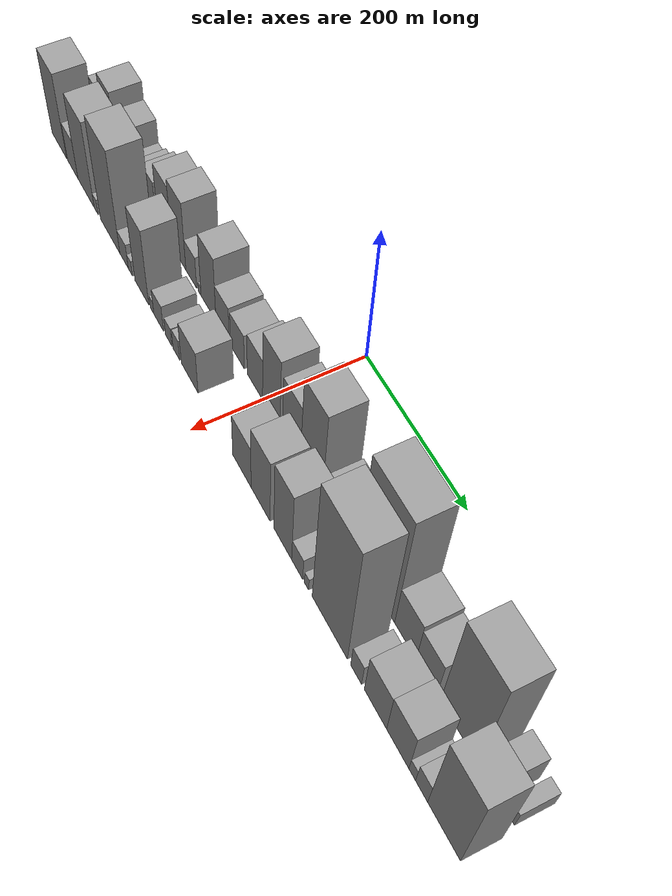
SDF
<sdf version="1.6">
 <world name="default">
  <scene>
   <sky><clouds><speed>12</speed></clouds></sky>
   <ambient>0.4 0.4 0.4 1</ambient>
   <background>0.7 0.7 0.7 1</background>
   <shadows>1</shadows>
  </scene>
  <gravity>0 0 -9.8066</gravity>
  <magnetic_field>6e-06 2.3e-05 -4.2e-05</magnetic_field>
  <physics default="0" name="default_physics" type="ode">
   <ode>
    <solver>
     <type>quick</type>
     <iters>10</iters>
     <sor>1.0</sor>
     <use_dynamic_moi_rescaling>0</use_dynamic_moi_rescaling>
    </solver>
    <constraints>
     <cfm>0</cfm>
     <erp>0.2</erp>
     <contact_max_correcting_vel>100</contact_max_correcting_vel>
     <contact_surface_layer>0.001</contact_surface_layer>
    </constraints>
   </ode>
   <max_step_size>0.004</max_step_size>
   <real_time_factor>1</real_time_factor>
   <real_time_update_rate>250</real_time_update_rate>
  </physics>
  <light name="sun" type="directional">
   <pose>0 0 10 0 0 0</pose>
   <diffuse>0.8 0.8 0.8 1</diffuse>
   <specular>0.2 0.2 0.2 1</specular>
   <attenuation>
    <range>1000</range>
    <constant>0.9</constant>
    <linear>0.01</linear>
    <quadratic>0.001</quadratic>
   </attenuation>
   <direction>-0.5 0.1 -0.9</direction>
  </light>
  <model name="building_1">
   <static>1</static>
   <pose>100.0000 -433.1233 0 0.000000 0.000000 0.000000</pose>
   <link name="link">
    <pose>0 0 30.00 0 0 0</pose>
    <collision name="collision"><geometry><box><size>40.0000 33.7534 60.0000</size></box></geometry></collision>
    <visual name="visual">
     <cast_shadows>0</cast_shadows>
     <geometry><box><size>40.0000 33.7534 60.0000</size></box></geometry>
     <material>
      <script>
       <uri>model://grey_wall/materials/scripts</uri>
       <uri>model://grey_wall/materials/textures</uri>
       <name>vrc/grey_wall</name>
      </script>
     </material>
    </visual>
   </link>
  </model>
  <model name="building_2">
   <static>1</static>
   <pose>100.0000 -398.6063 0 0.000000 0.000000 0.000000</pose>
   <link name="link">
    <pose>0 0 46.50 0 0 0</pose>
    <collision name="collision"><geometry><box><size>40.0000 35.2806 93.0000</size></box></geometry></collision>
    <visual name="visual">
     <cast_shadows>0</cast_shadows>
     <geometry><box><size>40.0000 35.2806 93.0000</size></box></geometry>
     <material>
      <script>
       <uri>model://grey_wall/materials/scripts</uri>
       <uri>model://grey_wall/materials/textures</uri>
       <name>vrc/grey_wall</name>
      </script>
     </material>
    </visual>
   </link>
  </model>
  <model name="building_3">
   <static>1</static>
   <pose>100.0000 -363.3893 0 0.000000 0.000000 0.000000</pose>
   <link name="link">
    <pose>0 0 33.00 0 0 0</pose>
    <collision name="collision"><geometry><box><size>40.0000 35.1533 66.0000</size></box></geometry></collision>
    <visual name="visual">
     <cast_shadows>0</cast_shadows>
     <geometry><box><size>40.0000 35.1533 66.0000</size></box></geometry>
     <material>
      <script>
       <uri>model://grey_wall/materials/scripts</uri>
       <uri>model://grey_wall/materials/textures</uri>
       <name>vrc/grey_wall</name>
      </script>
     </material>
    </visual>
   </link>
  </model>
  <model name="building_4">
   <static>1</static>
   <pose>100.0000 -337.9470 0 0.000000 0.000000 0.000000</pose>
   <link name="link">
    <pose>0 0 15.00 0 0 0</pose>
    <collision name="collision"><geometry><box><size>40.0000 15.7314 30.0000</size></box></geometry></collision>
    <visual name="visual">
     <cast_shadows>0</cast_shadows>
     <geometry><box><size>40.0000 15.7314 30.0000</size></box></geometry>
     <material>
      <script>
       <uri>model://grey_wall/materials/scripts</uri>
       <uri>model://grey_wall/materials/textures</uri>
       <name>vrc/grey_wall</name>
      </script>
     </material>
    </visual>
   </link>
  </model>
  <model name="building_5">
   <static>1</static>
   <pose>100.0000 -310.8924 0 0.000000 0.000000 0.000000</pose>
   <link name="link">
    <pose>0 0 21.00 0 0 0</pose>
    <collision name="collision"><geometry><box><size>40.0000 24.3778 42.0000</size></box></geometry></collision>
    <visual name="visual">
     <cast_shadows>0</cast_shadows>
     <geometry><box><size>40.0000 24.3778 42.0000</size></box></geometry>
     <material>
      <script>
       <uri>model://grey_wall/materials/scripts</uri>
       <uri>model://grey_wall/materials/textures</uri>
       <name>vrc/grey_wall</name>
      </script>
     </material>
    </visual>
   </link>
  </model>
  <model name="building_6">
   <static>1</static>
   <pose>100.0000 -282.7242 0 0.000000 0.000000 0.000000</pose>
   <link name="link">
    <pose>0 0 30.00 0 0 0</pose>
    <collision name="collision"><geometry><box><size>40.0000 31.9586 60.0000</size></box></geometry></collision>
    <visual name="visual">
     <cast_shadows>0</cast_shadows>
     <geometry><box><size>40.0000 31.9586 60.0000</size></box></geometry>
     <material>
      <script>
       <uri>model://grey_wall/materials/scripts</uri>
       <uri>model://grey_wall/materials/textures</uri>
       <name>vrc/grey_wall</name>
      </script>
     </material>
    </visual>
   </link>
  </model>
  <model name="building_7">
   <static>1</static>
   <pose>100.0000 -242.1559 0 0.000000 0.000000 0.000000</pose>
   <link name="link">
    <pose>0 0 48.00 0 0 0</pose>
    <collision name="collision"><geometry><box><size>40.0000 37.1780 96.0000</size></box></geometry></collision>
    <visual name="visual">
     <cast_shadows>0</cast_shadows>
     <geometry><box><size>40.0000 37.1780 96.0000</size></box></geometry>
     <material>
      <script>
       <uri>model://grey_wall/materials/scripts</uri>
       <uri>model://grey_wall/materials/textures</uri>
       <name>vrc/grey_wall</name>
      </script>
     </material>
    </visual>
   </link>
  </model>
  <model name="building_8">
   <static>1</static>
   <pose>100.0000 -205.1618 0 0.000000 0.000000 0.000000</pose>
   <link name="link">
    <pose>0 0 54.00 0 0 0</pose>
    <collision name="collision"><geometry><box><size>40.0000 36.8103 108.0000</size></box></geometry></collision>
    <visual name="visual">
     <cast_shadows>0</cast_shadows>
     <geometry><box><size>40.0000 36.8103 108.0000</size></box></geometry>
     <material>
      <script>
       <uri>model://grey_wall/materials/scripts</uri>
       <uri>model://grey_wall/materials/textures</uri>
       <name>vrc/grey_wall</name>
      </script>
     </material>
    </visual>
   </link>
  </model>
  <model name="building_9">
   <static>1</static>
   <pose>100.0000 -172.9309 0 0.000000 0.000000 0.000000</pose>
   <link name="link">
    <pose>0 0 25.50 0 0 0</pose>
    <collision name="collision"><geometry><box><size>40.0000 27.6515 51.0000</size></box></geometry></collision>
    <visual name="visual">
     <cast_shadows>0</cast_shadows>
     <geometry><box><size>40.0000 27.6515 51.0000</size></box></geometry>
     <material>
      <script>
       <uri>model://grey_wall/materials/scripts</uri>
       <uri>model://grey_wall/materials/textures</uri>
       <name>vrc/grey_wall</name>
      </script>
     </material>
    </visual>
   </link>
  </model>
  <model name="building_10">
   <static>1</static>
   <pose>100.0000 -151.4823 0 0.000000 0.000000 0.000000</pose>
   <link name="link">
    <pose>0 0 7.50 0 0 0</pose>
    <collision name="collision"><geometry><box><size>40.0000 7.2456 15.0000</size></box></geometry></collision>
    <visual name="visual">
     <cast_shadows>0</cast_shadows>
     <geometry><box><size>40.0000 7.2456 15.0000</size></box></geometry>
     <material>
      <script>
       <uri>model://grey_wall/materials/scripts</uri>
       <uri>model://grey_wall/materials/textures</uri>
       <name>vrc/grey_wall</name>
      </script>
     </material>
    </visual>
   </link>
  </model>
  <model name="building_11">
   <static>1</static>
   <pose>100.0000 -129.2783 0 0.000000 0.000000 0.000000</pose>
   <link name="link">
    <pose>0 0 51.00 0 0 0</pose>
    <collision name="collision"><geometry><box><size>40.0000 37.1625 102.0000</size></box></geometry></collision>
    <visual name="visual">
     <cast_shadows>0</cast_shadows>
     <geometry><box><size>40.0000 37.1625 102.0000</size></box></geometry>
     <material>
      <script>
       <uri>model://grey_wall/materials/scripts</uri>
       <uri>model://grey_wall/materials/textures</uri>
       <name>vrc/grey_wall</name>
      </script>
     </material>
    </visual>
   </link>
  </model>
  <model name="building_12">
   <static>1</static>
   <pose>100.0000 -94.5166 0 0.000000 0.000000 0.000000</pose>
   <link name="link">
    <pose>0 0 30.00 0 0 0</pose>
    <collision name="collision"><geometry><box><size>40.0000 32.3609 60.0000</size></box></geometry></collision>
    <visual name="visual">
     <cast_shadows>0</cast_shadows>
     <geometry><box><size>40.0000 32.3609 60.0000</size></box></geometry>
     <material>
      <script>
       <uri>model://grey_wall/materials/scripts</uri>
       <uri>model://grey_wall/materials/textures</uri>
       <name>vrc/grey_wall</name>
      </script>
     </material>
    </visual>
   </link>
  </model>
  <model name="building_13">
   <static>1</static>
   <pose>100.0000 -58.9666 0 0.000000 0.000000 0.000000</pose>
   <link name="link">
    <pose>0 0 28.50 0 0 0</pose>
    <collision name="collision"><geometry><box><size>40.0000 32.7391 57.0000</size></box></geometry></collision>
    <visual name="visual">
     <cast_shadows>0</cast_shadows>
     <geometry><box><size>40.0000 32.7391 57.0000</size></box></geometry>
     <material>
      <script>
       <uri>model://grey_wall/materials/scripts</uri>
       <uri>model://grey_wall/materials/textures</uri>
       <name>vrc/grey_wall</name>
      </script>
     </material>
    </visual>
   </link>
  </model>
  <model name="building_14">
   <static>1</static>
   <pose>100.0000 -18.0284 0 0.000000 0.000000 0.000000</pose>
   <link name="link">
    <pose>0 0 34.50 0 0 0</pose>
    <collision name="collision"><geometry><box><size>40.0000 35.1373 69.0000</size></box></geometry></collision>
    <visual name="visual">
     <cast_shadows>0</cast_shadows>
     <geometry><box><size>40.0000 35.1373 69.0000</size></box></geometry>
     <material>
      <script>
       <uri>model://grey_wall/materials/scripts</uri>
       <uri>model://grey_wall/materials/textures</uri>
       <name>vrc/grey_wall</name>
      </script>
     </material>
    </visual>
   </link>
  </model>
  <model name="building_15">
   <static>1</static>
   <pose>100.0000 19.0672 0 0.000000 0.000000 0.000000</pose>
   <link name="link">
    <pose>0 0 58.50 0 0 0</pose>
    <collision name="collision"><geometry><box><size>40.0000 39.0541 117.0000</size></box></geometry></collision>
    <visual name="visual">
     <cast_shadows>0</cast_shadows>
     <geometry><box><size>40.0000 39.0541 117.0000</size></box></geometry>
     <material>
      <script>
       <uri>model://grey_wall/materials/scripts</uri>
       <uri>model://grey_wall/materials/textures</uri>
       <name>vrc/grey_wall</name>
      </script>
     </material>
    </visual>
   </link>
  </model>
  <model name="building_16">
   <static>1</static>
   <pose>100.0000 63.0145 0 0.000000 0.000000 0.000000</pose>
   <link name="link">
    <pose>0 0 49.50 0 0 0</pose>
    <collision name="collision"><geometry><box><size>40.0000 38.8404 99.0000</size></box></geometry></collision>
    <visual name="visual">
     <cast_shadows>0</cast_shadows>
     <geometry><box><size>40.0000 38.8404 99.0000</size></box></geometry>
     <material>
      <script>
       <uri>model://grey_wall/materials/scripts</uri>
       <uri>model://grey_wall/materials/textures</uri>
       <name>vrc/grey_wall</name>
      </script>
     </material>
    </visual>
   </link>
  </model>
  <model name="building_17">
   <static>1</static>
   <pose>100.0000 105.2916 0 0.000000 0.000000 0.000000</pose>
   <link name="link">
    <pose>0 0 75.00 0 0 0</pose>
    <collision name="collision"><geometry><box><size>40.0000 45.7138 150.0000</size></box></geometry></collision>
    <visual name="visual">
     <cast_shadows>0</cast_shadows>
     <geometry><box><size>40.0000 45.7138 150.0000</size></box></geometry>
     <material>
      <script>
       <uri>model://grey_wall/materials/scripts</uri>
       <uri>model://grey_wall/materials/textures</uri>
       <name>vrc/grey_wall</name>
      </script>
     </material>
    </visual>
   </link>
  </model>
  <model name="building_18">
   <static>1</static>
   <pose>100.0000 146.0126 0 0.000000 0.000000 0.000000</pose>
   <link name="link">
    <pose>0 0 27.00 0 0 0</pose>
    <collision name="collision"><geometry><box><size>40.0000 29.7282 54.0000</size></box></geometry></collision>
    <visual name="visual">
     <cast_shadows>0</cast_shadows>
     <geometry><box><size>40.0000 29.7282 54.0000</size></box></geometry>
     <material>
      <script>
       <uri>model://grey_wall/materials/scripts</uri>
       <uri>model://grey_wall/materials/textures</uri>
       <name>vrc/grey_wall</name>
      </script>
     </material>
    </visual>
   </link>
  </model>
  <model name="building_19">
   <static>1</static>
   <pose>100.0000 179.9734 0 0.000000 0.000000 0.000000</pose>
   <link name="link">
    <pose>0 0 34.50 0 0 0</pose>
    <collision name="collision"><geometry><box><size>40.0000 38.1934 69.0000</size></box></geometry></collision>
    <visual name="visual">
     <cast_shadows>0</cast_shadows>
     <geometry><box><size>40.0000 38.1934 69.0000</size></box></geometry>
     <material>
      <script>
       <uri>model://grey_wall/materials/scripts</uri>
       <uri>model://grey_wall/materials/textures</uri>
       <name>vrc/grey_wall</name>
      </script>
     </material>
    </visual>
   </link>
  </model>
  <model name="building_20">
   <static>1</static>
   <pose>100.0000 233.9346 0 0.000000 0.000000 0.000000</pose>
   <link name="link">
    <pose>0 0 97.50 0 0 0</pose>
    <collision name="collision"><geometry><box><size>40.0000 69.7288 195.0000</size></box></geometry></collision>
    <visual name="visual">
     <cast_shadows>0</cast_shadows>
     <geometry><box><size>40.0000 69.7288 195.0000</size></box></geometry>
     <material>
      <script>
       <uri>model://grey_wall/materials/scripts</uri>
       <uri>model://grey_wall/materials/textures</uri>
       <name>vrc/grey_wall</name>
      </script>
     </material>
    </visual>
   </link>
  </model>
  <model name="building_21">
   <static>1</static>
   <pose>100.0000 288.2508 0 0.000000 0.000000 0.000000</pose>
   <link name="link">
    <pose>0 0 36.00 0 0 0</pose>
    <collision name="collision"><geometry><box><size>40.0000 38.9037 72.0000</size></box></geometry></collision>
    <visual name="visual">
     <cast_shadows>0</cast_shadows>
     <geometry><box><size>40.0000 38.9037 72.0000</size></box></geometry>
     <material>
      <script>
       <uri>model://grey_wall/materials/scripts</uri>
       <uri>model://grey_wall/materials/textures</uri>
       <name>vrc/grey_wall</name>
      </script>
     </material>
    </visual>
   </link>
  </model>
  <model name="building_22">
   <static>1</static>
   <pose>100.0000 325.8493 0 0.000000 0.000000 0.000000</pose>
   <link name="link">
    <pose>0 0 31.50 0 0 0</pose>
    <collision name="collision"><geometry><box><size>40.0000 36.2934 63.0000</size></box></geometry></collision>
    <visual name="visual">
     <cast_shadows>0</cast_shadows>
     <geometry><box><size>40.0000 36.2934 63.0000</size></box></geometry>
     <material>
      <script>
       <uri>model://grey_wall/materials/scripts</uri>
       <uri>model://grey_wall/materials/textures</uri>
       <name>vrc/grey_wall</name>
      </script>
     </material>
    </visual>
   </link>
  </model>
  <model name="building_23">
   <static>1</static>
   <pose>100.0000 381.1660 0 0.000000 0.000000 0.000000</pose>
   <link name="link">
    <pose>0 0 87.00 0 0 0</pose>
    <collision name="collision"><geometry><box><size>40.0000 62.3401 174.0000</size></box></geometry></collision>
    <visual name="visual">
     <cast_shadows>0</cast_shadows>
     <geometry><box><size>40.0000 62.3401 174.0000</size></box></geometry>
     <material>
      <script>
       <uri>model://grey_wall/materials/scripts</uri>
       <uri>model://grey_wall/materials/textures</uri>
       <name>vrc/grey_wall</name>
      </script>
     </material>
    </visual>
   </link>
  </model>
  <model name="building_24">
   <static>1</static>
   <pose>100.0000 432.1774 0 0.000000 0.000000 0.000000</pose>
   <link name="link">
    <pose>0 0 27.00 0 0 0</pose>
    <collision name="collision"><geometry><box><size>40.0000 27.6825 54.0000</size></box></geometry></collision>
    <visual name="visual">
     <cast_shadows>0</cast_shadows>
     <geometry><box><size>40.0000 27.6825 54.0000</size></box></geometry>
     <material>
      <script>
       <uri>model://grey_wall/materials/scripts</uri>
       <uri>model://grey_wall/materials/textures</uri>
       <name>vrc/grey_wall</name>
      </script>
     </material>
    </visual>
   </link>
  </model>
  <model name="building_25">
   <static>1</static>
   <pose>100.0000 461.8387 0 0.000000 0.000000 0.000000</pose>
   <link name="link">
    <pose>0 0 15.00 0 0 0</pose>
    <collision name="collision"><geometry><box><size>40.0000 15.6401 30.0000</size></box></geometry></collision>
    <visual name="visual">
     <cast_shadows>0</cast_shadows>
     <geometry><box><size>40.0000 15.6401 30.0000</size></box></geometry>
     <material>
      <script>
       <uri>model://grey_wall/materials/scripts</uri>
       <uri>model://grey_wall/materials/textures</uri>
       <name>vrc/grey_wall</name>
      </script>
     </material>
    </visual>
   </link>
  </model>
  <model name="building_26">
   <static>1</static>
   <pose>155.0000 -420.0903 0 0.000000 0.000000 0.000000</pose>
   <link name="link">
    <pose>0 0 64.50 0 0 0</pose>
    <collision name="collision"><geometry><box><size>40.0000 45.8193 129.0000</size></box></geometry></collision>
    <visual name="visual">
     <cast_shadows>0</cast_shadows>
     <geometry><box><size>40.0000 45.8193 129.0000</size></box></geometry>
     <material>
      <script>
       <uri>model://grey_wall/materials/scripts</uri>
       <uri>model://grey_wall/materials/textures</uri>
       <name>vrc/grey_wall</name>
      </script>
     </material>
    </visual>
   </link>
  </model>
  <model name="building_27">
   <static>1</static>
   <pose>155.0000 -378.2168 0 0.000000 0.000000 0.000000</pose>
   <link name="link">
    <pose>0 0 30.00 0 0 0</pose>
    <collision name="collision"><geometry><box><size>40.0000 31.9277 60.0000</size></box></geometry></collision>
    <visual name="visual">
     <cast_shadows>0</cast_shadows>
     <geometry><box><size>40.0000 31.9277 60.0000</size></box></geometry>
     <material>
      <script>
       <uri>model://grey_wall/materials/scripts</uri>
       <uri>model://grey_wall/materials/textures</uri>
       <name>vrc/grey_wall</name>
      </script>
     </material>
    </visual>
   </link>
  </model>
  <model name="building_28">
   <static>1</static>
   <pose>155.0000 -337.9474 0 0.000000 0.000000 0.000000</pose>
   <link name="link">
    <pose>0 0 66.00 0 0 0</pose>
    <collision name="collision"><geometry><box><size>40.0000 48.6113 132.0000</size></box></geometry></collision>
    <visual name="visual">
     <cast_shadows>0</cast_shadows>
     <geometry><box><size>40.0000 48.6113 132.0000</size></box></geometry>
     <material>
      <script>
       <uri>model://grey_wall/materials/scripts</uri>
       <uri>model://grey_wall/materials/textures</uri>
       <name>vrc/grey_wall</name>
      </script>
     </material>
    </visual>
   </link>
  </model>
  <model name="building_29">
   <static>1</static>
   <pose>155.0000 -307.9744 0 0.000000 0.000000 0.000000</pose>
   <link name="link">
    <pose>0 0 12.00 0 0 0</pose>
    <collision name="collision"><geometry><box><size>40.0000 11.3347 24.0000</size></box></geometry></collision>
    <visual name="visual">
     <cast_shadows>0</cast_shadows>
     <geometry><box><size>40.0000 11.3347 24.0000</size></box></geometry>
     <material>
      <script>
       <uri>model://grey_wall/materials/scripts</uri>
       <uri>model://grey_wall/materials/textures</uri>
       <name>vrc/grey_wall</name>
      </script>
     </material>
    </visual>
   </link>
  </model>
  <model name="building_30">
   <static>1</static>
   <pose>155.0000 -267.6621 0 0.000000 0.000000 0.000000</pose>
   <link name="link">
    <pose>0 0 79.50 0 0 0</pose>
    <collision name="collision"><geometry><box><size>40.0000 55.2898 159.0000</size></box></geometry></collision>
    <visual name="visual">
     <cast_shadows>0</cast_shadows>
     <geometry><box><size>40.0000 55.2898 159.0000</size></box></geometry>
     <material>
      <script>
       <uri>model://grey_wall/materials/scripts</uri>
       <uri>model://grey_wall/materials/textures</uri>
       <name>vrc/grey_wall</name>
      </script>
     </material>
    </visual>
   </link>
  </model>
  <model name="building_31">
   <static>1</static>
   <pose>155.0000 -228.3386 0 0.000000 0.000000 0.000000</pose>
   <link name="link">
    <pose>0 0 19.50 0 0 0</pose>
    <collision name="collision"><geometry><box><size>40.0000 23.3573 39.0000</size></box></geometry></collision>
    <visual name="visual">
     <cast_shadows>0</cast_shadows>
     <geometry><box><size>40.0000 23.3573 39.0000</size></box></geometry>
     <material>
      <script>
       <uri>model://grey_wall/materials/scripts</uri>
       <uri>model://grey_wall/materials/textures</uri>
       <name>vrc/grey_wall</name>
      </script>
     </material>
    </visual>
   </link>
  </model>
  <model name="building_32">
   <static>1</static>
   <pose>155.0000 -210.9783 0 0.000000 0.000000 0.000000</pose>
   <link name="link">
    <pose>0 0 12.00 0 0 0</pose>
    <collision name="collision"><geometry><box><size>40.0000 11.3632 24.0000</size></box></geometry></collision>
    <visual name="visual">
     <cast_shadows>0</cast_shadows>
     <geometry><box><size>40.0000 11.3632 24.0000</size></box></geometry>
     <material>
      <script>
       <uri>model://grey_wall/materials/scripts</uri>
       <uri>model://grey_wall/materials/textures</uri>
       <name>vrc/grey_wall</name>
      </script>
     </material>
    </visual>
   </link>
  </model>
  <model name="building_33">
   <static>1</static>
   <pose>155.0000 -179.8417 0 0.000000 0.000000 0.000000</pose>
   <link name="link">
    <pose>0 0 60.00 0 0 0</pose>
    <collision name="collision"><geometry><box><size>40.0000 36.9101 120.0000</size></box></geometry></collision>
    <visual name="visual">
     <cast_shadows>0</cast_shadows>
     <geometry><box><size>40.0000 36.9101 120.0000</size></box></geometry>
     <material>
      <script>
       <uri>model://grey_wall/materials/scripts</uri>
       <uri>model://grey_wall/materials/textures</uri>
       <name>vrc/grey_wall</name>
      </script>
     </material>
    </visual>
   </link>
  </model>
  <model name="building_34">
   <static>1</static>
   <pose>155.0000 -152.7245 0 0.000000 0.000000 0.000000</pose>
   <link name="link">
    <pose>0 0 10.50 0 0 0</pose>
    <collision name="collision"><geometry><box><size>40.0000 9.3242 21.0000</size></box></geometry></collision>
    <visual name="visual">
     <cast_shadows>0</cast_shadows>
     <geometry><box><size>40.0000 9.3242 21.0000</size></box></geometry>
     <material>
      <script>
       <uri>model://grey_wall/materials/scripts</uri>
       <uri>model://grey_wall/materials/textures</uri>
       <name>vrc/grey_wall</name>
      </script>
     </material>
    </visual>
   </link>
  </model>
  <model name="building_35">
   <static>1</static>
   <pose>155.0000 -135.5541 0 0.000000 0.000000 0.000000</pose>
   <link name="link">
    <pose>0 0 21.00 0 0 0</pose>
    <collision name="collision"><geometry><box><size>40.0000 25.0165 42.0000</size></box></geometry></collision>
    <visual name="visual">
     <cast_shadows>0</cast_shadows>
     <geometry><box><size>40.0000 25.0165 42.0000</size></box></geometry>
     <material>
      <script>
       <uri>model://grey_wall/materials/scripts</uri>
       <uri>model://grey_wall/materials/textures</uri>
       <name>vrc/grey_wall</name>
      </script>
     </material>
    </visual>
   </link>
  </model>
  <model name="building_36">
   <static>1</static>
   <pose>155.0000 -109.7910 0 0.000000 0.000000 0.000000</pose>
   <link name="link">
    <pose>0 0 15.00 0 0 0</pose>
    <collision name="collision"><geometry><box><size>40.0000 16.5097 30.0000</size></box></geometry></collision>
    <visual name="visual">
     <cast_shadows>0</cast_shadows>
     <geometry><box><size>40.0000 16.5097 30.0000</size></box></geometry>
     <material>
      <script>
       <uri>model://grey_wall/materials/scripts</uri>
       <uri>model://grey_wall/materials/textures</uri>
       <name>vrc/grey_wall</name>
      </script>
     </material>
    </visual>
   </link>
  </model>
  <model name="building_37">
   <static>1</static>
   <pose>155.0000 -90.2625 0 0.000000 0.000000 0.000000</pose>
   <link name="link">
    <pose>0 0 16.50 0 0 0</pose>
    <collision name="collision"><geometry><box><size>40.0000 16.5471 33.0000</size></box></geometry></collision>
    <visual name="visual">
     <cast_shadows>0</cast_shadows>
     <geometry><box><size>40.0000 16.5471 33.0000</size></box></geometry>
     <material>
      <script>
       <uri>model://grey_wall/materials/scripts</uri>
       <uri>model://grey_wall/materials/textures</uri>
       <name>vrc/grey_wall</name>
      </script>
     </material>
    </visual>
   </link>
  </model>
  <model name="building_38">
   <static>1</static>
   <pose>155.0000 -57.4180 0 0.000000 0.000000 0.000000</pose>
   <link name="link">
    <pose>0 0 34.50 0 0 0</pose>
    <collision name="collision"><geometry><box><size>40.0000 41.1419 69.0000</size></box></geometry></collision>
    <visual name="visual">
     <cast_shadows>0</cast_shadows>
     <geometry><box><size>40.0000 41.1419 69.0000</size></box></geometry>
     <material>
      <script>
       <uri>model://grey_wall/materials/scripts</uri>
       <uri>model://grey_wall/materials/textures</uri>
       <name>vrc/grey_wall</name>
      </script>
     </material>
    </visual>
   </link>
  </model>
  <model name="building_39">
   <static>1</static>
   <pose>155.0000 64.7366 0 0.000000 0.000000 0.000000</pose>
   <link name="link">
    <pose>0 0 36.00 0 0 0</pose>
    <collision name="collision"><geometry><box><size>40.0000 41.0558 72.0000</size></box></geometry></collision>
    <visual name="visual">
     <cast_shadows>0</cast_shadows>
     <geometry><box><size>40.0000 41.0558 72.0000</size></box></geometry>
     <material>
      <script>
       <uri>model://grey_wall/materials/scripts</uri>
       <uri>model://grey_wall/materials/textures</uri>
       <name>vrc/grey_wall</name>
      </script>
     </material>
    </visual>
   </link>
  </model>
  <model name="building_40">
   <static>1</static>
   <pose>155.0000 105.6511 0 0.000000 0.000000 0.000000</pose>
   <link name="link">
    <pose>0 0 54.00 0 0 0</pose>
    <collision name="collision"><geometry><box><size>40.0000 40.7731 108.0000</size></box></geometry></collision>
    <visual name="visual">
     <cast_shadows>0</cast_shadows>
     <geometry><box><size>40.0000 40.7731 108.0000</size></box></geometry>
     <material>
      <script>
       <uri>model://grey_wall/materials/scripts</uri>
       <uri>model://grey_wall/materials/textures</uri>
       <name>vrc/grey_wall</name>
      </script>
     </material>
    </visual>
   </link>
  </model>
  <model name="building_41">
   <static>1</static>
   <pose>155.0000 152.5502 0 0.000000 0.000000 0.000000</pose>
   <link name="link">
    <pose>0 0 60.00 0 0 0</pose>
    <collision name="collision"><geometry><box><size>40.0000 37.0251 120.0000</size></box></geometry></collision>
    <visual name="visual">
     <cast_shadows>0</cast_shadows>
     <geometry><box><size>40.0000 37.0251 120.0000</size></box></geometry>
     <material>
      <script>
       <uri>model://grey_wall/materials/scripts</uri>
       <uri>model://grey_wall/materials/textures</uri>
       <name>vrc/grey_wall</name>
      </script>
     </material>
    </visual>
   </link>
  </model>
  <model name="building_42">
   <static>1</static>
   <pose>155.0000 182.3127 0 0.000000 0.000000 0.000000</pose>
   <link name="link">
    <pose>0 0 19.50 0 0 0</pose>
    <collision name="collision"><geometry><box><size>40.0000 22.5001 39.0000</size></box></geometry></collision>
    <visual name="visual">
     <cast_shadows>0</cast_shadows>
     <geometry><box><size>40.0000 22.5001 39.0000</size></box></geometry>
     <material>
      <script>
       <uri>model://grey_wall/materials/scripts</uri>
       <uri>model://grey_wall/materials/textures</uri>
       <name>vrc/grey_wall</name>
      </script>
     </material>
    </visual>
   </link>
  </model>
  <model name="building_43">
   <static>1</static>
   <pose>155.0000 200.9857 0 0.000000 0.000000 0.000000</pose>
   <link name="link">
    <pose>0 0 10.50 0 0 0</pose>
    <collision name="collision"><geometry><box><size>40.0000 8.8458 21.0000</size></box></geometry></collision>
    <visual name="visual">
     <cast_shadows>0</cast_shadows>
     <geometry><box><size>40.0000 8.8458 21.0000</size></box></geometry>
     <material>
      <script>
       <uri>model://grey_wall/materials/scripts</uri>
       <uri>model://grey_wall/materials/textures</uri>
       <name>vrc/grey_wall</name>
      </script>
     </material>
    </visual>
   </link>
  </model>
  <model name="building_44">
   <static>1</static>
   <pose>155.0000 246.3577 0 0.000000 0.000000 0.000000</pose>
   <link name="link">
    <pose>0 0 106.50 0 0 0</pose>
    <collision name="collision"><geometry><box><size>40.0000 67.8983 213.0000</size></box></geometry></collision>
    <visual name="visual">
     <cast_shadows>0</cast_shadows>
     <geometry><box><size>40.0000 67.8983 213.0000</size></box></geometry>
     <material>
      <script>
       <uri>model://grey_wall/materials/scripts</uri>
       <uri>model://grey_wall/materials/textures</uri>
       <name>vrc/grey_wall</name>
      </script>
     </material>
    </visual>
   </link>
  </model>
  <model name="building_45">
   <static>1</static>
   <pose>155.0000 296.3518 0 0.000000 0.000000 0.000000</pose>
   <link name="link">
    <pose>0 0 19.50 0 0 0</pose>
    <collision name="collision"><geometry><box><size>40.0000 20.0897 39.0000</size></box></geometry></collision>
    <visual name="visual">
     <cast_shadows>0</cast_shadows>
     <geometry><box><size>40.0000 20.0897 39.0000</size></box></geometry>
     <material>
      <script>
       <uri>model://grey_wall/materials/scripts</uri>
       <uri>model://grey_wall/materials/textures</uri>
       <name>vrc/grey_wall</name>
      </script>
     </material>
    </visual>
   </link>
  </model>
  <model name="building_46">
   <static>1</static>
   <pose>155.0000 331.3195 0 0.000000 0.000000 0.000000</pose>
   <link name="link">
    <pose>0 0 36.00 0 0 0</pose>
    <collision name="collision"><geometry><box><size>40.0000 39.8456 72.0000</size></box></geometry></collision>
    <visual name="visual">
     <cast_shadows>0</cast_shadows>
     <geometry><box><size>40.0000 39.8456 72.0000</size></box></geometry>
     <material>
      <script>
       <uri>model://grey_wall/materials/scripts</uri>
       <uri>model://grey_wall/materials/textures</uri>
       <name>vrc/grey_wall</name>
      </script>
     </material>
    </visual>
   </link>
  </model>
  <model name="building_47">
   <static>1</static>
   <pose>155.0000 370.4628 0 0.000000 0.000000 0.000000</pose>
   <link name="link">
    <pose>0 0 37.50 0 0 0</pose>
    <collision name="collision"><geometry><box><size>40.0000 38.4411 75.0000</size></box></geometry></collision>
    <visual name="visual">
     <cast_shadows>0</cast_shadows>
     <geometry><box><size>40.0000 38.4411 75.0000</size></box></geometry>
     <material>
      <script>
       <uri>model://grey_wall/materials/scripts</uri>
       <uri>model://grey_wall/materials/textures</uri>
       <name>vrc/grey_wall</name>
      </script>
     </material>
    </visual>
   </link>
  </model>
  <model name="building_48">
   <static>1</static>
   <pose>155.0000 395.3565 0 0.000000 0.000000 0.000000</pose>
   <link name="link">
    <pose>0 0 12.00 0 0 0</pose>
    <collision name="collision"><geometry><box><size>40.0000 11.3462 24.0000</size></box></geometry></collision>
    <visual name="visual">
     <cast_shadows>0</cast_shadows>
     <geometry><box><size>40.0000 11.3462 24.0000</size></box></geometry>
     <material>
      <script>
       <uri>model://grey_wall/materials/scripts</uri>
       <uri>model://grey_wall/materials/textures</uri>
       <name>vrc/grey_wall</name>
      </script>
     </material>
    </visual>
   </link>
  </model>
  <model name="building_49">
   <static>1</static>
   <pose>155.0000 411.0547 0 0.000000 0.000000 0.000000</pose>
   <link name="link">
    <pose>0 0 19.50 0 0 0</pose>
    <collision name="collision"><geometry><box><size>40.0000 20.0503 39.0000</size></box></geometry></collision>
    <visual name="visual">
     <cast_shadows>0</cast_shadows>
     <geometry><box><size>40.0000 20.0503 39.0000</size></box></geometry>
     <material>
      <script>
       <uri>model://grey_wall/materials/scripts</uri>
       <uri>model://grey_wall/materials/textures</uri>
       <name>vrc/grey_wall</name>
      </script>
     </material>
    </visual>
   </link>
  </model>
  <model name="building_50">
   <static>1</static>
   <pose>155.0000 447.6234 0 0.000000 0.000000 0.000000</pose>
   <link name="link">
    <pose>0 0 76.50 0 0 0</pose>
    <collision name="collision"><geometry><box><size>40.0000 53.0871 153.0000</size></box></geometry></collision>
    <visual name="visual">
     <cast_shadows>0</cast_shadows>
     <geometry><box><size>40.0000 53.0871 153.0000</size></box></geometry>
     <material>
      <script>
       <uri>model://grey_wall/materials/scripts</uri>
       <uri>model://grey_wall/materials/textures</uri>
       <name>vrc/grey_wall</name>
      </script>
     </material>
    </visual>
   </link>
  </model>
 </world>
</sdf>
